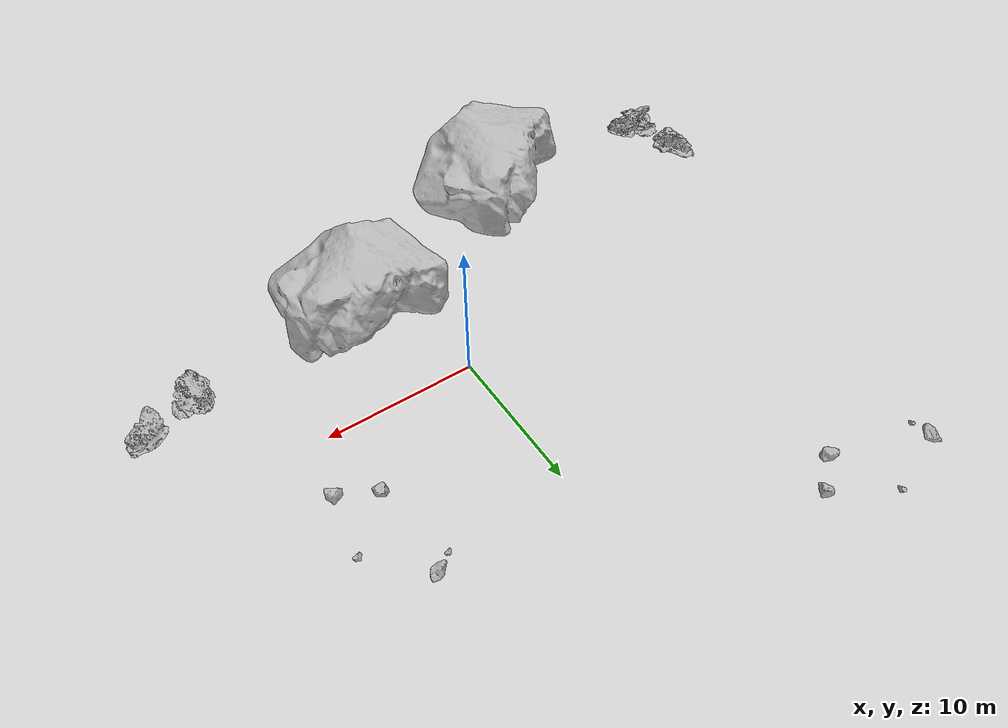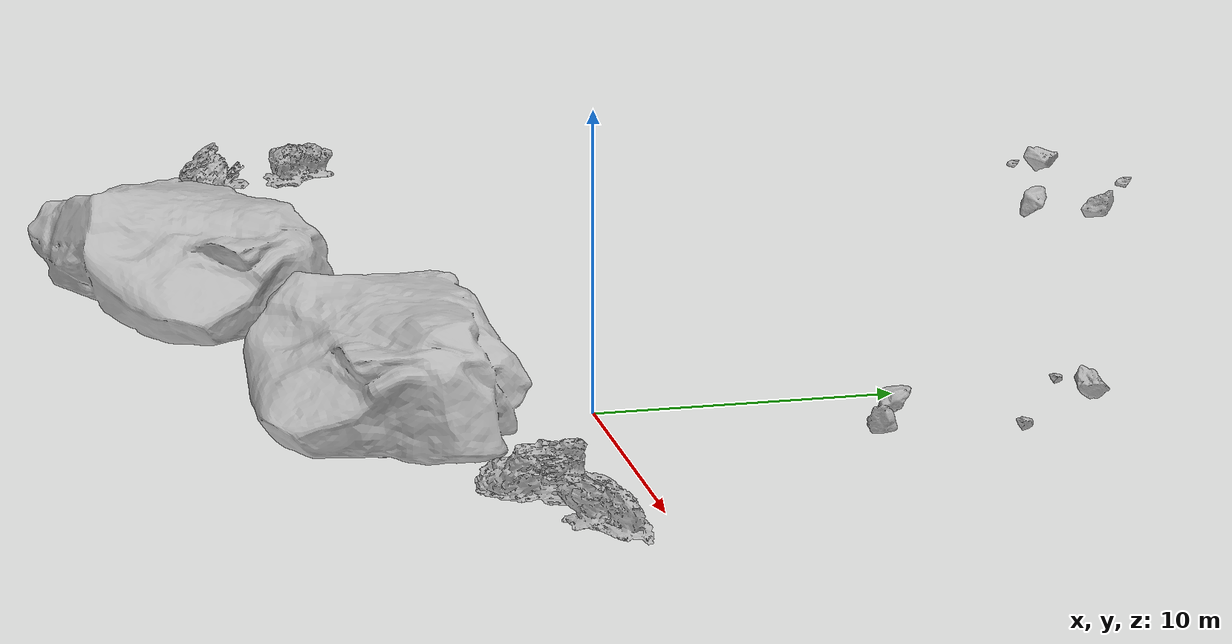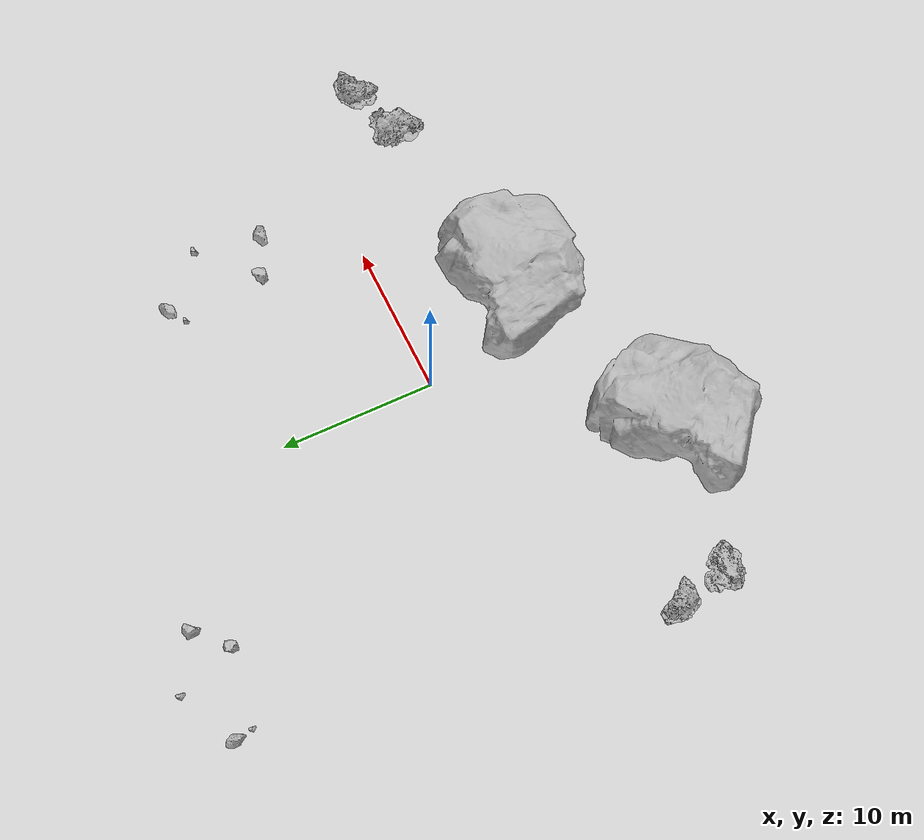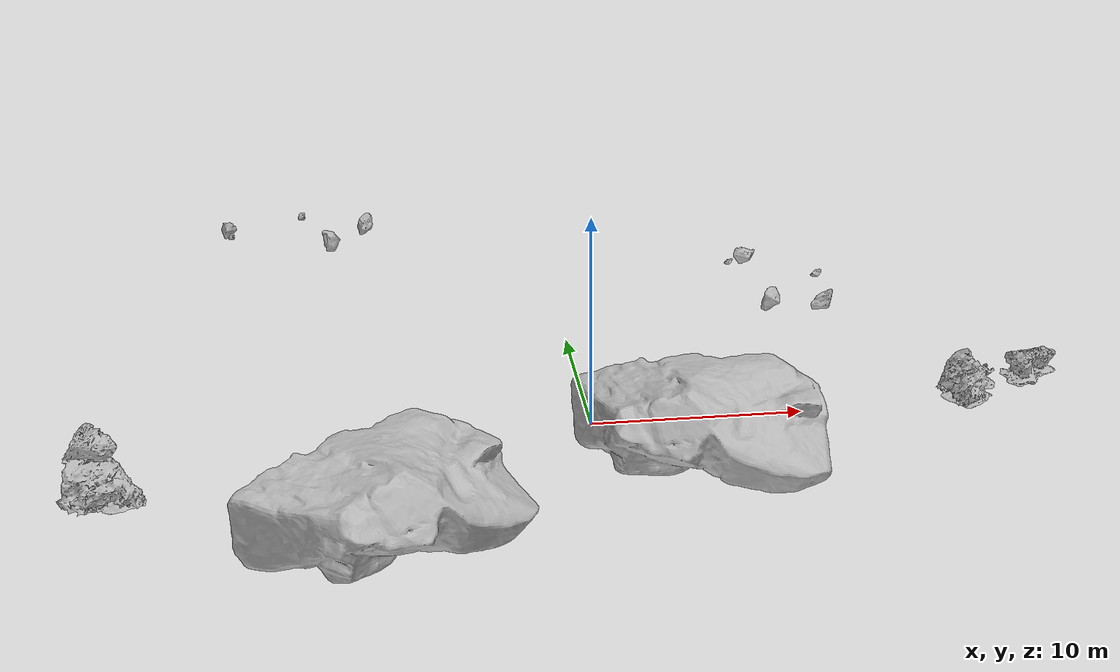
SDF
<sdf version="1.8">
 <world name="forest">
  <scene>
   <ambient>0.4 0.4 0.4 1</ambient>
   <background>0.7 0.8 0.9 1</background>
   <shadows>true</shadows>
   <sky><clouds><speed>12</speed></clouds></sky>
  </scene>
  <physics name="ode_physics" default="true" type="ode">
   <max_step_size>0.001</max_step_size>
   <real_time_factor>1.0</real_time_factor>
   <real_time_update_rate>1000</real_time_update_rate>
   <gravity>0 0 -9.81</gravity>
  </physics>
  <spherical_coordinates>
   <surface_model>EARTH_WGS84</surface_model>
   <world_frame_orientation>ENU</world_frame_orientation>
   <latitude_deg>47.6062</latitude_deg>
   <longitude_deg>-122.3321</longitude_deg>
   <elevation>50.0</elevation>
   <heading_deg>0</heading_deg>
  </spherical_coordinates>
  <plugin filename="gz-sim-physics-system" name="gz::sim::systems::Physics"/>
  <plugin filename="gz-sim-user-commands-system" name="gz::sim::systems::UserCommands"/>
  <plugin filename="gz-sim-scene-broadcaster-system" name="gz::sim::systems::SceneBroadcaster"/>
  <plugin filename="gz-sim-contact-system" name="gz::sim::systems::Contact"/>
  <plugin filename="gz-sim-sensors-system" name="gz::sim::systems::Sensors">
   <render_engine>ogre2</render_engine>
  </plugin>
  <plugin filename="gz-sim-imu-system" name="gz::sim::systems::Imu"/>
  <plugin filename="ignition-gazebo-navsat-system" name="ignition::gazebo::systems::NavSat"/>
  <light type="directional" name="sun">
   <pose>0 0 100 0 0 0</pose>
   <diffuse>0.8 0.8 0.8 1</diffuse>
   <specular>0.2 0.2 0.2 1</specular>
   <direction>-0.5 0.1 -0.9</direction>
  </light>
  <include><uri>model://rockformation</uri><name>rock_formation_1</name><pose>10 10 3 0 0 0</pose></include>
  <include><uri>model://rockformation</uri><name>rock_formation_2</name><pose>-15 20 3 0 0 1.2</pose></include>
  <include><uri>model://rock9</uri><name>forest_rock_1</name><pose>5 -8 3 0 0 0</pose></include>
  <include><uri>model://rock9</uri><name>forest_rock_2</name><pose>-8 -12 3 0 0 0.7</pose></include>
  <include><uri>model://jaggedrock</uri><name>jagged_rock_1</name><pose>18 -5 3 0 0 0</pose></include>
  <include><uri>model://jaggedrock</uri><name>jagged_rock_2</name><pose>-20 -8 3 0 0 1.5</pose></include>
 </world>
</sdf>

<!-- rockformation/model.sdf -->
<sdf version='1.4'>
  <model name="rockformation">
    <static>true</static>
    <link name="link">
        <inertial>
            <mass>1</mass>
            <inertia>
              <ixx>0.166667</ixx>
              <ixy>0</ixy>
              <ixz>0</ixz>
              <iyy>0.166667</iyy>
              <iyz>0</iyz>
              <izz>0.166667</izz>
            </inertia>
            <pose frame=''>0 0 0 0 -0 0</pose>
         </inertial>

         <self_collide>1</self_collide>
         <kinematic>0</kinematic>
         <gravity>0</gravity>

          <collision name="collision">
            <geometry>
              <mesh>
                <uri>model://rockformation/meshes/rockformation.dae</uri>
              </mesh>
            </geometry>
            <surface>
              <friction>
                <ode>
                  <mu>1</mu>
                  <mu2>1</mu2>
                  <fdir1>0 0 0</fdir1>
                  <slip1>0</slip1>
                  <slip2>0</slip2>
                </ode>
                <torsional>
                  <coefficient>1</coefficient>
                  <patch_radius>0</patch_radius>
                  <surface_radius>0</surface_radius>
                  <use_patch_radius>1</use_patch_radius>
                  <ode>
                    <slip>0</slip>
                  </ode>
                </torsional>
              </friction>
              <bounce>
                <restitution_coefficient>0</restitution_coefficient>
                <threshold>1e+06</threshold>
              </bounce>
              <contact>
                <collide_without_contact>0</collide_without_contact>
                <collide_without_contact_bitmask>1</collide_without_contact_bitmask>
                <collide_bitmask>1</collide_bitmask>
                <ode>
                  <soft_cfm>0</soft_cfm>
                  <soft_erp>0.2</soft_erp>
                  <kp>1e+13</kp>
                  <kd>1</kd>
                  <max_vel>0.01</max_vel>
                  <min_depth>0</min_depth>
                </ode>
                <bullet>
                  <split_impulse>1</split_impulse>
                  <split_impulse_penetration_threshold>-0.01</split_impulse_penetration_threshold>
                  <soft_cfm>0</soft_cfm>
                  <soft_erp>0.2</soft_erp>
                  <kp>1e+13</kp>
                  <kd>1</kd>
                </bullet>
              </contact>
            </surface>
          </collision>

          <visual name="visual">
            <geometry>
              <mesh>
                <uri>model://rockformation/meshes/rockformation.dae</uri>
              </mesh>
            </geometry>
          </visual>
    </link>
  </model>
</sdf>

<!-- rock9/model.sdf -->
<sdf version='1.4'>
  <model name="rock9">
    <static>true</static>
    <link name="link">
      <inertial>
        <mass>1</mass>
        <inertia>
          <ixx>0.166667</ixx>
          <ixy>0</ixy>
          <ixz>0</ixz>
          <iyy>0.166667</iyy>
          <iyz>0</iyz>
          <izz>0.166667</izz>
        </inertia>
        <pose frame=''>0 0 0 0 -0 0</pose>
      </inertial>

      <self_collide>1</self_collide>
      <kinematic>0</kinematic>
      <gravity>1</gravity>

      <collision name="collision">
        <geometry>
          <mesh>
            <uri>model://rock9/meshes/rock9.dae</uri>
          </mesh>
        </geometry>
        <surface>
          <friction>
            <ode>
              <mu>1</mu>
              <mu2>1</mu2>
              <fdir1>0 0 0</fdir1>
              <slip1>0</slip1>
              <slip2>0</slip2>
            </ode>
            <torsional>
              <coefficient>1</coefficient>
              <patch_radius>0</patch_radius>
              <surface_radius>0</surface_radius>
              <use_patch_radius>1</use_patch_radius>
              <ode>
                <slip>0</slip>
              </ode>
            </torsional>
          </friction>
          <bounce>
            <restitution_coefficient>0</restitution_coefficient>
            <threshold>1e+06</threshold>
          </bounce>
          <contact>
            <collide_without_contact>0</collide_without_contact>
            <collide_without_contact_bitmask>1</collide_without_contact_bitmask>
            <collide_bitmask>1</collide_bitmask>
            <ode>
              <soft_cfm>0</soft_cfm>
              <soft_erp>0.2</soft_erp>
              <kp>1e+13</kp>
              <kd>1</kd>
              <max_vel>0.01</max_vel>
              <min_depth>0</min_depth>
            </ode>
            <bullet>
              <split_impulse>1</split_impulse>
              <split_impulse_penetration_threshold>-0.01</split_impulse_penetration_threshold>
              <soft_cfm>0</soft_cfm>
              <soft_erp>0.2</soft_erp>
              <kp>1e+13</kp>
              <kd>1</kd>
            </bullet>
          </contact>
        </surface>
      </collision>

      <visual name="visual">
        <geometry>
          <mesh>
            <uri>model://rock9/meshes/rock9.dae</uri>
          </mesh>
        </geometry>
      </visual>
    </link>
  </model>
</sdf>

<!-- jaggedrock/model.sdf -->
<sdf version='1.4'>
  <model name="jaggedrock">
    <static>true</static>
    <link name="link">
        <inertial>
            <mass>1</mass>
            <inertia>
              <ixx>0.166667</ixx>
              <ixy>0</ixy>
              <ixz>0</ixz>
              <iyy>0.166667</iyy>
              <iyz>0</iyz>
              <izz>0.166667</izz>
            </inertia>
            <pose frame=''>0 0 0 0 -0 0</pose>
         </inertial>

         <self_collide>1</self_collide>
         <kinematic>0</kinematic>
         <gravity>0</gravity>

          <collision name="collision">
            <geometry>
              <mesh>
                <uri>model://jaggedrock/meshes/jaggedrock_texture.dae</uri>
              </mesh>
            </geometry>
            <surface>
              <friction>
                <ode>
                  <mu>1</mu>
                  <mu2>1</mu2>
                  <fdir1>0 0 0</fdir1>
                  <slip1>0</slip1>
                  <slip2>0</slip2>
                </ode>
                <torsional>
                  <coefficient>1</coefficient>
                  <patch_radius>0</patch_radius>
                  <surface_radius>0</surface_radius>
                  <use_patch_radius>1</use_patch_radius>
                  <ode>
                    <slip>0</slip>
                  </ode>
                </torsional>
              </friction>
              <bounce>
                <restitution_coefficient>0</restitution_coefficient>
                <threshold>1e+06</threshold>
              </bounce>
              <contact>
                <collide_without_contact>0</collide_without_contact>
                <collide_without_contact_bitmask>1</collide_without_contact_bitmask>
                <collide_bitmask>1</collide_bitmask>
                <ode>
                  <soft_cfm>0</soft_cfm>
                  <soft_erp>0.2</soft_erp>
                  <kp>1e+13</kp>
                  <kd>1</kd>
                  <max_vel>0.01</max_vel>
                  <min_depth>0</min_depth>
                </ode>
                <bullet>
                  <split_impulse>1</split_impulse>
                  <split_impulse_penetration_threshold>-0.01</split_impulse_penetration_threshold>
                  <soft_cfm>0</soft_cfm>
                  <soft_erp>0.2</soft_erp>
                  <kp>1e+13</kp>
                  <kd>1</kd>
                </bullet>
              </contact>
            </surface>
          </collision>

          <visual name="visual">
            <geometry>
              <mesh>
                <uri>model://jaggedrock/meshes/jaggedrock_texture.dae</uri>
              </mesh>
            </geometry>
          </visual>
    </link>
  </model>
</sdf>
